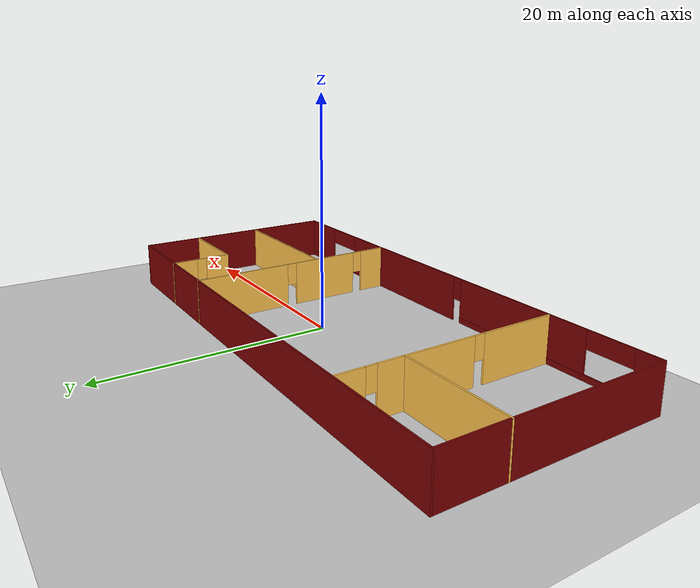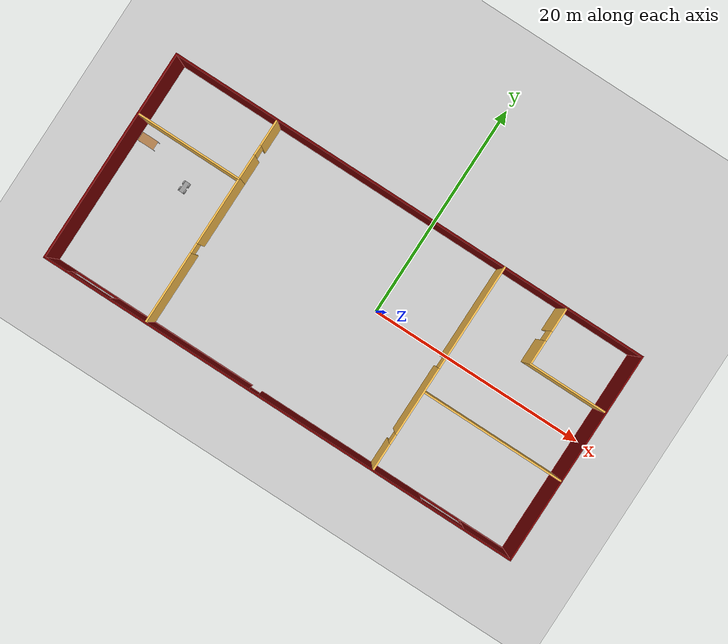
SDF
<sdf version="1.6">
 <world name="default">
  <model name="ground_plane">
   <static>1</static>
   <link name="link">
    <collision name="collision">
     <geometry><plane><normal>0 0 1</normal><size>100 100</size></plane></geometry>
     <surface><friction><ode><mu>100</mu><mu2>50</mu2></ode></friction></surface>
    </collision>
    <visual name="visual">
     <cast_shadows>0</cast_shadows>
     <geometry><plane><normal>0 0 1</normal><size>100 100</size></plane></geometry>
     <material>
      <script><uri>file://media/materials/scripts/gazebo.material</uri><name>Gazebo/Grey</name></script>
     </material>
    </visual>
   </link>
  </model>
  <model name="Building">
   <pose>-2.517 -1.189 0 0 -0 0</pose>
   <link name="Wall_0">
    <collision name="Wall_0_Collision">
     <geometry><box><size>19.5 0.15 4</size></box></geometry>
     <pose>0 0 2 0 -0 0</pose>
    </collision>
    <visual name="Wall_0_Visual">
     <pose>0 0 2 0 -0 0</pose>
     <geometry><box><size>19.5 0.15 4</size></box></geometry>
     <material>
      <script><uri>file://media/materials/scripts/gazebo.material</uri><name>Gazebo/Grey</name></script>
      <ambient>0.478431 0 0 1</ambient>
     </material>
     <meta><layer>0</layer></meta>
    </visual>
    <pose>-22.173 -0.009 0 0 0 -1.5708</pose>
   </link>
   <link name="Wall_1">
    <pose>0.001999 -9.684 0 0 -0 0</pose>
    <visual name="Wall_1_Visual_0">
     <pose>-21.1563 0 2 0 -0 0</pose>
     <geometry><box><size>2.18732 0.15 4</size></box></geometry>
     <material>
      <script><uri>file://media/materials/scripts/gazebo.material</uri><name>Gazebo/Grey</name></script>
      <ambient>0.478431 0 0 1</ambient>
     </material>
     <meta><layer>0</layer></meta>
    </visual>
    <collision name="Wall_1_Collision_0">
     <geometry><box><size>2.18732 0.15 4</size></box></geometry>
     <pose>-21.1563 0 2 0 -0 0</pose>
    </collision>
    <visual name="Wall_1_Visual_1">
     <pose>5.91304 0 2 0 -0 0</pose>
     <geometry><box><size>15.6013 0.15 4</size></box></geometry>
     <material>
      <script><uri>file://media/materials/scripts/gazebo.material</uri><name>Gazebo/Grey</name></script>
      <ambient>0.478431 0 0 1</ambient>
     </material>
     <meta><layer>0</layer></meta>
    </visual>
    <collision name="Wall_1_Collision_1">
     <geometry><box><size>15.6013 0.15 4</size></box></geometry>
     <pose>5.91304 0 2 0 -0 0</pose>
    </collision>
    <visual name="Wall_1_Visual_2">
     <pose>-11.4251 0 0.25 0 -0 0</pose>
     <geometry><box><size>17.2751 0.15 0.5</size></box></geometry>
     <material>
      <script><uri>file://media/materials/scripts/gazebo.material</uri><name>Gazebo/Grey</name></script>
      <ambient>0.478431 0 0 1</ambient>
     </material>
     <meta><layer>0</layer></meta>
    </visual>
    <collision name="Wall_1_Collision_2">
     <geometry><box><size>17.2751 0.15 0.5</size></box></geometry>
     <pose>-11.4251 0 0.25 0 -0 0</pose>
    </collision>
    <visual name="Wall_1_Visual_3">
     <pose>17.9818 0 0.25 0 -0 0</pose>
     <geometry><box><size>8.53632 0.15 0.5</size></box></geometry>
     <material>
      <script><uri>file://media/materials/scripts/gazebo.material</uri><name>Gazebo/Grey</name></script>
      <ambient>0.478431 0 0 1</ambient>
     </material>
     <meta><layer>0</layer></meta>
    </visual>
    <collision name="Wall_1_Collision_3">
     <geometry><box><size>8.53632 0.15 0.5</size></box></geometry>
     <pose>17.9818 0 0.25 0 -0 0</pose>
    </collision>
    <visual name="Wall_1_Visual_4">
     <pose>-9.42514 0 2.25 0 -0 0</pose>
     <geometry><box><size>13.2751 0.15 3.5</size></box></geometry>
     <material>
      <script><uri>file://media/materials/scripts/gazebo.material</uri><name>Gazebo/Grey</name></script>
      <ambient>0.478431 0 0 1</ambient>
     </material>
     <meta><layer>0</layer></meta>
    </visual>
    <collision name="Wall_1_Collision_4">
     <geometry><box><size>13.2751 0.15 3.5</size></box></geometry>
     <pose>-9.42514 0 2.25 0 -0 0</pose>
    </collision>
    <visual name="Wall_1_Visual_5">
     <pose>-9.42514 0 2.25 0 -0 0</pose>
     <geometry><box><size>13.2751 0.15 3.5</size></box></geometry>
     <material>
      <script><uri>file://media/materials/scripts/gazebo.material</uri><name>Gazebo/Grey</name></script>
      <ambient>0.478431 0 0 1</ambient>
     </material>
     <meta><layer>0</layer></meta>
    </visual>
    <collision name="Wall_1_Collision_5">
     <geometry><box><size>13.2751 0.15 3.5</size></box></geometry>
     <pose>-9.42514 0 2.25 0 -0 0</pose>
    </collision>
    <visual name="Wall_1_Visual_6">
     <pose>19.9818 0 2.25 0 -0 0</pose>
     <geometry><box><size>4.53632 0.15 3.5</size></box></geometry>
     <material>
      <script><uri>file://media/materials/scripts/gazebo.material</uri><name>Gazebo/Grey</name></script>
      <ambient>0.478431 0 0 1</ambient>
     </material>
     <meta><layer>0</layer></meta>
    </visual>
    <collision name="Wall_1_Collision_6">
     <geometry><box><size>4.53632 0.15 3.5</size></box></geometry>
     <pose>19.9818 0 2.25 0 -0 0</pose>
    </collision>
    <visual name="Wall_1_Visual_7">
     <pose>-2.3376 0 3 0 -0 0</pose>
     <geometry><box><size>0.9 0.15 2</size></box></geometry>
     <material>
      <script><uri>file://media/materials/scripts/gazebo.material</uri><name>Gazebo/Grey</name></script>
      <ambient>0.478431 0 0 1</ambient>
     </material>
     <meta><layer>0</layer></meta>
    </visual>
    <collision name="Wall_1_Collision_7">
     <geometry><box><size>0.9 0.15 2</size></box></geometry>
     <pose>-2.3376 0 3 0 -0 0</pose>
    </collision>
    <visual name="Wall_1_Visual_8">
     <pose>-2.3376 0 3 0 -0 0</pose>
     <geometry><box><size>0.9 0.15 2</size></box></geometry>
     <material>
      <script><uri>file://media/materials/scripts/gazebo.material</uri><name>Gazebo/Grey</name></script>
      <ambient>0.478431 0 0 1</ambient>
     </material>
     <meta><layer>0</layer></meta>
    </visual>
    <collision name="Wall_1_Collision_8">
     <geometry><box><size>0.9 0.15 2</size></box></geometry>
     <pose>-2.3376 0 3 0 -0 0</pose>
    </collision>
    <visual name="Wall_1_Visual_9">
     <pose>-18.0627 0 3.25 0 -0 0</pose>
     <geometry><box><size>4 0.15 1.5</size></box></geometry>
     <material>
      <script><uri>file://media/materials/scripts/gazebo.material</uri><name>Gazebo/Grey</name></script>
      <ambient>0.478431 0 0 1</ambient>
     </material>
     <meta><layer>0</layer></meta>
    </visual>
    <collision name="Wall_1_Collision_9">
     <geometry><box><size>4 0.15 1.5</size></box></geometry>
     <pose>-18.0627 0 3.25 0 -0 0</pose>
    </collision>
    <visual name="Wall_1_Visual_10">
     <pose>15.7137 0 3.25 0 -0 0</pose>
     <geometry><box><size>4 0.15 1.5</size></box></geometry>
     <material>
      <script><uri>file://media/materials/scripts/gazebo.material</uri><name>Gazebo/Grey</name></script>
      <ambient>0.478431 0 0 1</ambient>
     </material>
     <meta><layer>0</layer></meta>
    </visual>
    <collision name="Wall_1_Collision_10">
     <geometry><box><size>4 0.15 1.5</size></box></geometry>
     <pose>15.7137 0 3.25 0 -0 0</pose>
    </collision>
   </link>
   <link name="Wall_11">
    <pose>-12.577 6.826 0 0 -0 1.5708</pose>
    <visual name="Wall_11_Visual_0">
     <pose>-1.70646 0 2 0 -0 0</pose>
     <geometry><box><size>2.33709 0.15 4</size></box></geometry>
     <material>
      <script><uri>file://media/materials/scripts/gazebo.material</uri><name>Gazebo/Grey</name></script>
      <ambient>1 0.764706 0.305882 1</ambient>
     </material>
     <meta><layer>0</layer></meta>
    </visual>
    <collision name="Wall_11_Collision_0">
     <geometry><box><size>2.33709 0.15 4</size></box></geometry>
     <pose>-1.70646 0 2 0 -0 0</pose>
    </collision>
    <visual name="Wall_11_Visual_1">
     <pose>1.61854 0 2 0 -0 0</pose>
     <geometry><box><size>2.51292 0.15 4</size></box></geometry>
     <material>
      <script><uri>file://media/materials/scripts/gazebo.material</uri><name>Gazebo/Grey</name></script>
      <ambient>1 0.764706 0.305882 1</ambient>
     </material>
     <meta><layer>0</layer></meta>
    </visual>
    <collision name="Wall_11_Collision_1">
     <geometry><box><size>2.51292 0.15 4</size></box></geometry>
     <pose>1.61854 0 2 0 -0 0</pose>
    </collision>
    <visual name="Wall_11_Visual_2">
     <pose>-0.087915 0 3 0 -0 0</pose>
     <geometry><box><size>0.9 0.15 2</size></box></geometry>
     <material>
      <script><uri>file://media/materials/scripts/gazebo.material</uri><name>Gazebo/Grey</name></script>
      <ambient>1 0.764706 0.305882 1</ambient>
     </material>
     <meta><layer>0</layer></meta>
    </visual>
    <collision name="Wall_11_Collision_2">
     <geometry><box><size>0.9 0.15 2</size></box></geometry>
     <pose>-0.087915 0 3 0 -0 0</pose>
    </collision>
   </link>
   <link name="Wall_14">
    <pose>9.08 -0.008 0 0 0 -1.5708</pose>
    <visual name="Wall_14_Visual_0">
     <pose>-5.35516 0 2 0 -0 0</pose>
     <geometry><box><size>8.78968 0.15 4</size></box></geometry>
     <material>
      <script><uri>file://media/materials/scripts/gazebo.material</uri><name>Gazebo/Grey</name></script>
      <ambient>1 0.764706 0.305882 1</ambient>
     </material>
     <meta><layer>0</layer></meta>
    </visual>
    <collision name="Wall_14_Collision_0">
     <geometry><box><size>8.78968 0.15 4</size></box></geometry>
     <pose>-5.35516 0 2 0 -0 0</pose>
    </collision>
    <visual name="Wall_14_Visual_1">
     <pose>3.0945 0 2 0 -0 0</pose>
     <geometry><box><size>6.30964 0.15 4</size></box></geometry>
     <material>
      <script><uri>file://media/materials/scripts/gazebo.material</uri><name>Gazebo/Grey</name></script>
      <ambient>1 0.764706 0.305882 1</ambient>
     </material>
     <meta><layer>0</layer></meta>
    </visual>
    <collision name="Wall_14_Collision_1">
     <geometry><box><size>6.30964 0.15 4</size></box></geometry>
     <pose>3.0945 0 2 0 -0 0</pose>
    </collision>
    <visual name="Wall_14_Visual_2">
     <pose>8.44966 0 2 0 -0 0</pose>
     <geometry><box><size>2.60067 0.15 4</size></box></geometry>
     <material>
      <script><uri>file://media/materials/scripts/gazebo.material</uri><name>Gazebo/Grey</name></script>
      <ambient>1 0.764706 0.305882 1</ambient>
     </material>
     <meta><layer>0</layer></meta>
    </visual>
    <collision name="Wall_14_Collision_2">
     <geometry><box><size>2.60067 0.15 4</size></box></geometry>
     <pose>8.44966 0 2 0 -0 0</pose>
    </collision>
    <visual name="Wall_14_Visual_3">
     <pose>-0.510317 0 3 0 -0 0</pose>
     <geometry><box><size>0.9 0.15 2</size></box></geometry>
     <material>
      <script><uri>file://media/materials/scripts/gazebo.material</uri><name>Gazebo/Grey</name></script>
      <ambient>1 0.764706 0.305882 1</ambient>
     </material>
     <meta><layer>0</layer></meta>
    </visual>
    <collision name="Wall_14_Collision_3">
     <geometry><box><size>0.9 0.15 2</size></box></geometry>
     <pose>-0.510317 0 3 0 -0 0</pose>
    </collision>
    <visual name="Wall_14_Visual_4">
     <pose>6.69933 0 3 0 -0 0</pose>
     <geometry><box><size>0.9 0.15 2</size></box></geometry>
     <material>
      <script><uri>file://media/materials/scripts/gazebo.material</uri><name>Gazebo/Grey</name></script>
      <ambient>1 0.764706 0.305882 1</ambient>
     </material>
     <meta><layer>0</layer></meta>
    </visual>
    <collision name="Wall_14_Collision_4">
     <geometry><box><size>0.9 0.15 2</size></box></geometry>
     <pose>6.69933 0 3 0 -0 0</pose>
    </collision>
   </link>
   <link name="Wall_17">
    <collision name="Wall_17_Collision">
     <geometry><box><size>13.15 0.15 4</size></box></geometry>
     <pose>0 0 2 0 -0 0</pose>
    </collision>
    <visual name="Wall_17_Visual">
     <pose>0 0 2 0 -0 0</pose>
     <geometry><box><size>13.15 0.15 4</size></box></geometry>
     <material>
      <script><uri>file://media/materials/scripts/gazebo.material</uri><name>Gazebo/Grey</name></script>
      <ambient>1 0.764706 0.305882 1</ambient>
     </material>
     <meta><layer>0</layer></meta>
    </visual>
    <pose>15.611 -2.194 0 0 -0 0</pose>
   </link>
   <link name="Wall_2">
    <collision name="Wall_2_Collision">
     <geometry><box><size>19.5 0.15 4</size></box></geometry>
     <pose>0 0 2 0 -0 0</pose>
    </collision>
    <visual name="Wall_2_Visual">
     <pose>0 0 2 0 -0 0</pose>
     <geometry><box><size>19.5 0.15 4</size></box></geometry>
     <material>
      <script><uri>file://media/materials/scripts/gazebo.material</uri><name>Gazebo/Grey</name></script>
      <ambient>0.478431 0 0 1</ambient>
     </material>
     <meta><layer>0</layer></meta>
    </visual>
    <pose>22.177 -0.009 0 0 -0 1.5708</pose>
   </link>
   <link name="Wall_3">
    <collision name="Wall_3_Collision">
     <geometry><box><size>44.5 0.15 4</size></box></geometry>
     <pose>0 0 2 0 -0 0</pose>
    </collision>
    <visual name="Wall_3_Visual">
     <pose>0 0 2 0 -0 0</pose>
     <geometry><box><size>44.5 0.15 4</size></box></geometry>
     <material>
      <script><uri>file://media/materials/scripts/gazebo.material</uri><name>Gazebo/Grey</name></script>
      <ambient>0.478431 0 0 1</ambient>
     </material>
     <meta><layer>0</layer></meta>
    </visual>
    <pose>0.001999 9.666 0 0 -0 3.14159</pose>
   </link>
   <link name="Wall_5">
    <collision name="Wall_5_Collision">
     <geometry><box><size>9.75 0.15 4</size></box></geometry>
     <pose>0 0 2 0 -0 0</pose>
    </collision>
    <visual name="Wall_5_Visual">
     <pose>0 0 2 0 -0 0</pose>
     <geometry><box><size>9.75 0.15 4</size></box></geometry>
     <material>
      <script><uri>file://media/materials/scripts/gazebo.material</uri><name>Gazebo/Grey</name></script>
      <ambient>1 0.764706 0.305882 1</ambient>
     </material>
     <meta><layer>0</layer></meta>
    </visual>
    <pose>-17.377 4.026 0 0 -0 0</pose>
   </link>
   <link name="Wall_6">
    <pose>-12.577 -2.774 0 0 0 -1.5708</pose>
    <visual name="Wall_6_Visual_0">
     <pose>-3.76615 0 2 0 -0 0</pose>
     <geometry><box><size>6.2177 0.15 4</size></box></geometry>
     <material>
      <script><uri>file://media/materials/scripts/gazebo.material</uri><name>Gazebo/Grey</name></script>
      <ambient>1 0.764706 0.305882 1</ambient>
     </material>
     <meta><layer>0</layer></meta>
    </visual>
    <collision name="Wall_6_Collision_0">
     <geometry><box><size>6.2177 0.15 4</size></box></geometry>
     <pose>-3.76615 0 2 0 -0 0</pose>
    </collision>
    <visual name="Wall_6_Visual_1">
     <pose>3.55885 0 2 0 -0 0</pose>
     <geometry><box><size>6.6323 0.15 4</size></box></geometry>
     <material>
      <script><uri>file://media/materials/scripts/gazebo.material</uri><name>Gazebo/Grey</name></script>
      <ambient>1 0.764706 0.305882 1</ambient>
     </material>
     <meta><layer>0</layer></meta>
    </visual>
    <collision name="Wall_6_Collision_1">
     <geometry><box><size>6.6323 0.15 4</size></box></geometry>
     <pose>3.55885 0 2 0 -0 0</pose>
    </collision>
    <visual name="Wall_6_Visual_2">
     <pose>-0.207302 0 3 0 -0 0</pose>
     <geometry><box><size>0.9 0.15 2</size></box></geometry>
     <material>
      <script><uri>file://media/materials/scripts/gazebo.material</uri><name>Gazebo/Grey</name></script>
      <ambient>1 0.764706 0.305882 1</ambient>
     </material>
     <meta><layer>0</layer></meta>
    </visual>
    <collision name="Wall_6_Collision_2">
     <geometry><box><size>0.9 0.15 2</size></box></geometry>
     <pose>-0.207302 0 3 0 -0 0</pose>
    </collision>
   </link>
   <link name="Wall_8">
    <pose>15.006 7.009 0 0 0 -1.5708</pose>
    <visual name="Wall_8_Visual_0">
     <pose>-1.58074 0 2 0 -0 0</pose>
     <geometry><box><size>2.33852 0.15 4</size></box></geometry>
     <material>
      <script><uri>file://media/materials/scripts/gazebo.material</uri><name>Gazebo/Grey</name></script>
      <ambient>1 0.764706 0.305882 1</ambient>
     </material>
     <meta><layer>0</layer></meta>
    </visual>
    <collision name="Wall_8_Collision_0">
     <geometry><box><size>2.33852 0.15 4</size></box></geometry>
     <pose>-1.58074 0 2 0 -0 0</pose>
    </collision>
    <visual name="Wall_8_Visual_1">
     <pose>1.61926 0 2 0 -0 0</pose>
     <geometry><box><size>2.26148 0.15 4</size></box></geometry>
     <material>
      <script><uri>file://media/materials/scripts/gazebo.material</uri><name>Gazebo/Grey</name></script>
      <ambient>1 0.764706 0.305882 1</ambient>
     </material>
     <meta><layer>0</layer></meta>
    </visual>
    <collision name="Wall_8_Collision_1">
     <geometry><box><size>2.26148 0.15 4</size></box></geometry>
     <pose>1.61926 0 2 0 -0 0</pose>
    </collision>
    <visual name="Wall_8_Visual_2">
     <pose>0.038517 0 3 0 -0 0</pose>
     <geometry><box><size>0.9 0.15 2</size></box></geometry>
     <material>
      <script><uri>file://media/materials/scripts/gazebo.material</uri><name>Gazebo/Grey</name></script>
      <ambient>1 0.764706 0.305882 1</ambient>
     </material>
     <meta><layer>0</layer></meta>
    </visual>
    <collision name="Wall_8_Collision_2">
     <geometry><box><size>0.9 0.15 2</size></box></geometry>
     <pose>0.038517 0 3 0 -0 0</pose>
    </collision>
   </link>
   <link name="Wall_9">
    <collision name="Wall_9_Collision">
     <geometry><box><size>7.25 0.15 4</size></box></geometry>
     <pose>0 0 2 0 -0 0</pose>
    </collision>
    <visual name="Wall_9_Visual">
     <pose>0 0 2 0 -0 0</pose>
     <geometry><box><size>7.25 0.15 4</size></box></geometry>
     <material>
      <script><uri>file://media/materials/scripts/gazebo.material</uri><name>Gazebo/Grey</name></script>
      <ambient>1 0.764706 0.305882 1</ambient>
     </material>
     <meta><layer>0</layer></meta>
    </visual>
    <pose>18.556 4.334 0 0 -0 0</pose>
   </link>
   <static>1</static>
  </model>
  <model name="4Wheel_Robot_clone">
   <link name="link_2">
    <pose>0.001842 -0.000209 0 0 -0 0</pose>
    <inertial>
     <mass>1</mass>
     <inertia>
      <ixx>0.166667</ixx>
      <ixy>0</ixy>
      <ixz>0</ixz>
      <iyy>0.166667</iyy>
      <iyz>0</iyz>
      <izz>0.166667</izz>
     </inertia>
    </inertial>
    <visual name="visual">
     <geometry><box><size>0.4 1 0.1</size></box></geometry>
     <material>
      <lighting>1</lighting>
      <script><uri>file://media/materials/scripts/gazebo.material</uri><name>Gazebo/Grey</name></script>
      <shader type="pixel"><normal_map>__default__</normal_map></shader>
      <ambient>0.3 0.3 0.3 1</ambient>
      <diffuse>0.7 0.7 0.7 1</diffuse>
      <specular>0.01 0.01 0.01 1</specular>
      <emissive>0 0 0 1</emissive>
     </material>
    </visual>
    <collision name="collision">
     <geometry><box><size>0.4 1 0.1</size></box></geometry>
     <surface>
      <friction>
       <ode><mu>1</mu><mu2>1</mu2><fdir1>0 0 0</fdir1><slip1>0</slip1><slip2>0</slip2></ode>
       <torsional>
        <coefficient>1</coefficient>
        <patch_radius>0</patch_radius>
        <surface_radius>0</surface_radius>
        <use_patch_radius>1</use_patch_radius>
        <ode><slip>0</slip></ode>
       </torsional>
      </friction>
      <bounce><restitution_coefficient>0</restitution_coefficient><threshold>1e+06</threshold></bounce>
      <contact>
       <collide_without_contact>0</collide_without_contact>
       <collide_without_contact_bitmask>1</collide_without_contact_bitmask>
       <collide_bitmask>1</collide_bitmask>
       <ode>
        <soft_cfm>0</soft_cfm>
        <soft_erp>0.2</soft_erp>
        <kp>1e+13</kp>
        <kd>1</kd>
        <max_vel>0.01</max_vel>
        <min_depth>0</min_depth>
       </ode>
       <bullet>
        <split_impulse>1</split_impulse>
        <split_impulse_penetration_threshold>-0.01</split_impulse_penetration_threshold>
        <soft_cfm>0</soft_cfm>
        <soft_erp>0.2</soft_erp>
        <kp>1e+13</kp>
        <kd>1</kd>
       </bullet>
      </contact>
     </surface>
    </collision>
   </link>
   <link name="link_3">
    <pose>-0.252675 0.298691 0 1.57079 -9.6e-05 -1.54815</pose>
    <inertial>
     <mass>1</mass>
     <inertia><ixx>0.145833</ixx><ixy>0</ixy><ixz>0</ixz><iyy>0.145833</iyy><iyz>0</iyz><izz>0.125</izz></inertia>
    </inertial>
    <visual name="visual">
     <geometry><cylinder><radius>0.2</radius><length>0.1</length></cylinder></geometry>
     <material>
      <lighting>1</lighting>
      <script><uri>file://media/materials/scripts/gazebo.material</uri><name>Gazebo/Grey</name></script>
      <shader type="pixel"><normal_map>__default__</normal_map></shader>
      <ambient>0.3 0.3 0.3 1</ambient>
      <diffuse>0.7 0.7 0.7 1</diffuse>
      <specular>0.01 0.01 0.01 1</specular>
      <emissive>0 0 0 1</emissive>
     </material>
    </visual>
    <collision name="collision">
     <geometry><cylinder><radius>0.2</radius><length>0.1</length></cylinder></geometry>
     <surface>
      <friction>
       <ode><mu>1</mu><mu2>1</mu2><fdir1>0 0 0</fdir1><slip1>0</slip1><slip2>0</slip2></ode>
       <torsional>
        <coefficient>1</coefficient>
        <patch_radius>0</patch_radius>
        <surface_radius>0</surface_radius>
        <use_patch_radius>1</use_patch_radius>
        <ode><slip>0</slip></ode>
       </torsional>
      </friction>
      <bounce><restitution_coefficient>0</restitution_coefficient><threshold>1e+06</threshold></bounce>
      <contact>
       <collide_without_contact>0</collide_without_contact>
       <collide_without_contact_bitmask>1</collide_without_contact_bitmask>
       <collide_bitmask>1</collide_bitmask>
       <ode>
        <soft_cfm>0</soft_cfm>
        <soft_erp>0.2</soft_erp>
        <kp>1e+13</kp>
        <kd>1</kd>
        <max_vel>0.01</max_vel>
        <min_depth>0</min_depth>
       </ode>
       <bullet>
        <split_impulse>1</split_impulse>
        <split_impulse_penetration_threshold>-0.01</split_impulse_penetration_threshold>
        <soft_cfm>0</soft_cfm>
        <soft_erp>0.2</soft_erp>
        <kp>1e+13</kp>
        <kd>1</kd>
       </bullet>
      </contact>
     </surface>
    </collision>
   </link>
   <link name="link_3_clone">
    <pose>-0.255703 -0.298438 0 1.5708 9.6e-05 1.60871</pose>
    <inertial>
     <mass>1</mass>
     <inertia><ixx>0.145833</ixx><ixy>0</ixy><ixz>0</ixz><iyy>0.145833</iyy><iyz>0</iyz><izz>0.125</izz></inertia>
    </inertial>
    <visual name="visual">
     <geometry><cylinder><radius>0.2</radius><length>0.1</length></cylinder></geometry>
     <material>
      <lighting>1</lighting>
      <script><uri>file://media/materials/scripts/gazebo.material</uri><name>Gazebo/Grey</name></script>
      <shader type="pixel"><normal_map>__default__</normal_map></shader>
      <ambient>0.3 0.3 0.3 1</ambient>
      <diffuse>0.7 0.7 0.7 1</diffuse>
      <specular>0.01 0.01 0.01 1</specular>
      <emissive>0 0 0 1</emissive>
     </material>
    </visual>
    <collision name="collision">
     <geometry><cylinder><radius>0.2</radius><length>0.1</length></cylinder></geometry>
     <surface>
      <friction>
       <ode><mu>1</mu><mu2>1</mu2><fdir1>0 0 0</fdir1><slip1>0</slip1><slip2>0</slip2></ode>
       <torsional>
        <coefficient>1</coefficient>
        <patch_radius>0</patch_radius>
        <surface_radius>0</surface_radius>
        <use_patch_radius>1</use_patch_radius>
        <ode><slip>0</slip></ode>
       </torsional>
      </friction>
      <bounce><restitution_coefficient>0</restitution_coefficient><threshold>1e+06</threshold></bounce>
      <contact>
       <collide_without_contact>0</collide_without_contact>
       <collide_without_contact_bitmask>1</collide_without_contact_bitmask>
       <collide_bitmask>1</collide_bitmask>
       <ode>
        <soft_cfm>0</soft_cfm>
        <soft_erp>0.2</soft_erp>
        <kp>1e+13</kp>
        <kd>1</kd>
        <max_vel>0.01</max_vel>
        <min_depth>0</min_depth>
       </ode>
       <bullet>
        <split_impulse>1</split_impulse>
        <split_impulse_penetration_threshold>-0.01</split_impulse_penetration_threshold>
        <soft_cfm>0</soft_cfm>
        <soft_erp>0.2</soft_erp>
        <kp>1e+13</kp>
        <kd>1</kd>
       </bullet>
      </contact>
     </surface>
    </collision>
   </link>
   <link name="link_3_clone_0">
    <pose>0.252501 0.299608 0 1.5708 9.6e-05 1.57409</pose>
    <inertial>
     <mass>1</mass>
     <inertia><ixx>0.145833</ixx><ixy>0</ixy><ixz>0</ixz><iyy>0.145833</iyy><iyz>0</iyz><izz>0.125</izz></inertia>
    </inertial>
    <visual name="visual">
     <geometry><cylinder><radius>0.2</radius><length>0.1</length></cylinder></geometry>
     <material>
      <lighting>1</lighting>
      <script><uri>file://media/materials/scripts/gazebo.material</uri><name>Gazebo/Grey</name></script>
      <shader type="pixel"><normal_map>__default__</normal_map></shader>
      <ambient>0.3 0.3 0.3 1</ambient>
      <diffuse>0.7 0.7 0.7 1</diffuse>
      <specular>0.01 0.01 0.01 1</specular>
      <emissive>0 0 0 1</emissive>
     </material>
    </visual>
    <collision name="collision">
     <geometry><cylinder><radius>0.2</radius><length>0.1</length></cylinder></geometry>
     <surface>
      <friction>
       <ode><mu>1</mu><mu2>1</mu2><fdir1>0 0 0</fdir1><slip1>0</slip1><slip2>0</slip2></ode>
       <torsional>
        <coefficient>1</coefficient>
        <patch_radius>0</patch_radius>
        <surface_radius>0</surface_radius>
        <use_patch_radius>1</use_patch_radius>
        <ode><slip>0</slip></ode>
       </torsional>
      </friction>
      <bounce><restitution_coefficient>0</restitution_coefficient><threshold>1e+06</threshold></bounce>
      <contact>
       <collide_without_contact>0</collide_without_contact>
       <collide_without_contact_bitmask>1</collide_without_contact_bitmask>
       <collide_bitmask>1</collide_bitmask>
       <ode>
        <soft_cfm>0</soft_cfm>
        <soft_erp>0.2</soft_erp>
        <kp>1e+13</kp>
        <kd>1</kd>
        <max_vel>0.01</max_vel>
        <min_depth>0</min_depth>
       </ode>
       <bullet>
        <split_impulse>1</split_impulse>
        <split_impulse_penetration_threshold>-0.01</split_impulse_penetration_threshold>
        <soft_cfm>0</soft_cfm>
        <soft_erp>0.2</soft_erp>
        <kp>1e+13</kp>
        <kd>1</kd>
       </bullet>
      </contact>
     </surface>
    </collision>
   </link>
   <link name="link_3_clone_1">
    <pose>0.254035 -0.299653 0 1.57079 9.6e-05 1.55982</pose>
    <inertial>
     <mass>1</mass>
     <inertia><ixx>0.145833</ixx><ixy>0</ixy><ixz>0</ixz><iyy>0.145833</iyy><iyz>0</iyz><izz>0.125</izz></inertia>
    </inertial>
    <visual name="visual">
     <geometry><cylinder><radius>0.2</radius><length>0.1</length></cylinder></geometry>
     <material>
      <lighting>1</lighting>
      <script><uri>file://media/materials/scripts/gazebo.material</uri><name>Gazebo/Grey</name></script>
      <shader type="pixel"><normal_map>__default__</normal_map></shader>
      <ambient>0.3 0.3 0.3 1</ambient>
      <diffuse>0.7 0.7 0.7 1</diffuse>
      <specular>0.01 0.01 0.01 1</specular>
      <emissive>0 0 0 1</emissive>
     </material>
    </visual>
    <collision name="collision">
     <geometry><cylinder><radius>0.2</radius><length>0.1</length></cylinder></geometry>
     <surface>
      <friction>
       <ode><mu>1</mu><mu2>1</mu2><fdir1>0 0 0</fdir1><slip1>0</slip1><slip2>0</slip2></ode>
       <torsional>
        <coefficient>1</coefficient>
        <patch_radius>0</patch_radius>
        <surface_radius>0</surface_radius>
        <use_patch_radius>1</use_patch_radius>
        <ode><slip>0</slip></ode>
       </torsional>
      </friction>
      <bounce><restitution_coefficient>0</restitution_coefficient><threshold>1e+06</threshold></bounce>
      <contact>
       <collide_without_contact>0</collide_without_contact>
       <collide_without_contact_bitmask>1</collide_without_contact_bitmask>
       <collide_bitmask>1</collide_bitmask>
       <ode>
        <soft_cfm>0</soft_cfm>
        <soft_erp>0.2</soft_erp>
        <kp>1e+13</kp>
        <kd>1</kd>
        <max_vel>0.01</max_vel>
        <min_depth>0</min_depth>
       </ode>
       <bullet>
        <split_impulse>1</split_impulse>
        <split_impulse_penetration_threshold>-0.01</split_impulse_penetration_threshold>
        <soft_cfm>0</soft_cfm>
        <soft_erp>0.2</soft_erp>
        <kp>1e+13</kp>
        <kd>1</kd>
       </bullet>
      </contact>
     </surface>
    </collision>
   </link>
   <joint name="link_2_JOINT_10" type="revolute">
    <parent>link_2</parent>
    <child>link_3_clone_1</child>
    <axis>
     <xyz>0 0 1</xyz>
     <use_parent_model_frame>0</use_parent_model_frame>
     <limit>
      <lower>-1.79769e+308</lower>
      <upper>1.79769e+308</upper>
      <effort>-1</effort>
      <velocity>-1</velocity>
     </limit>
     <dynamics>
      <spring_reference>0</spring_reference>
      <spring_stiffness>0</spring_stiffness>
      <damping>0</damping>
     </dynamics>
    </axis>
    <physics>
     <ode><limit><cfm>0</cfm><erp>0.2</erp></limit><suspension><cfm>0</cfm><erp>0.2</erp></suspension></ode>
    </physics>
   </joint>
   <joint name="link_2_JOINT_5" type="revolute">
    <parent>link_2</parent>
    <child>link_3</child>
    <axis>
     <xyz>0 0 1</xyz>
     <use_parent_model_frame>0</use_parent_model_frame>
     <limit>
      <lower>-1.79769e+308</lower>
      <upper>1.79769e+308</upper>
      <effort>-1</effort>
      <velocity>-1</velocity>
     </limit>
     <dynamics>
      <spring_reference>0</spring_reference>
      <spring_stiffness>0</spring_stiffness>
      <damping>0</damping>
     </dynamics>
    </axis>
    <physics>
     <ode><limit><cfm>0</cfm><erp>0.2</erp></limit><suspension><cfm>0</cfm><erp>0.2</erp></suspension></ode>
    </physics>
   </joint>
   <joint name="link_2_JOINT_7" type="revolute">
    <parent>link_2</parent>
    <child>link_3_clone</child>
    <axis>
     <xyz>0 0 1</xyz>
     <use_parent_model_frame>0</use_parent_model_frame>
     <limit>
      <lower>-1.79769e+308</lower>
      <upper>1.79769e+308</upper>
      <effort>-1</effort>
      <velocity>-1</velocity>
     </limit>
     <dynamics>
      <spring_reference>0</spring_reference>
      <spring_stiffness>0</spring_stiffness>
      <damping>0</damping>
     </dynamics>
    </axis>
    <physics>
     <ode><limit><cfm>0</cfm><erp>0.2</erp></limit><suspension><cfm>0</cfm><erp>0.2</erp></suspension></ode>
    </physics>
   </joint>
   <joint name="link_2_JOINT_8" type="revolute">
    <parent>link_2</parent>
    <child>link_3_clone_0</child>
    <axis>
     <xyz>1 0 0</xyz>
     <use_parent_model_frame>0</use_parent_model_frame>
     <limit>
      <lower>-1.79769e+308</lower>
      <upper>1.79769e+308</upper>
      <effort>-1</effort>
      <velocity>-1</velocity>
     </limit>
     <dynamics>
      <spring_reference>0</spring_reference>
      <spring_stiffness>0</spring_stiffness>
      <damping>0</damping>
     </dynamics>
    </axis>
    <physics>
     <ode><limit><cfm>0</cfm><erp>0.2</erp></limit><suspension><cfm>0</cfm><erp>0.2</erp></suspension></ode>
    </physics>
   </joint>
   <static>0</static>
   <pose>-19.1196 -0.045358 0.2 -5e-06 7e-06 -0.035993</pose>
  </model>
  <model name="table">
   <static>1</static>
   <link name="link">
    <collision name="surface">
     <pose>0 0 1 0 -0 0</pose>
     <geometry><box><size>1.5 0.8 0.03</size></box></geometry>
     <surface><friction><ode><mu>0.6</mu><mu2>0.6</mu2></ode></friction></surface>
    </collision>
    <visual name="visual1">
     <pose>0 0 1 0 -0 0</pose>
     <geometry><box><size>1.5 0.8 0.03</size></box></geometry>
     <material>
      <script><uri>file://media/materials/scripts/gazebo.material</uri><name>Gazebo/Wood</name></script>
     </material>
    </visual>
    <collision name="front_left_leg">
     <pose>0.68 0.38 0.5 0 -0 0</pose>
     <geometry><cylinder><radius>0.02</radius><length>1</length></cylinder></geometry>
    </collision>
    <visual name="front_left_leg">
     <pose>0.68 0.38 0.5 0 -0 0</pose>
     <geometry><cylinder><radius>0.02</radius><length>1</length></cylinder></geometry>
     <material>
      <script><uri>file://media/materials/scripts/gazebo.material</uri><name>Gazebo/Grey</name></script>
     </material>
    </visual>
    <collision name="front_right_leg">
     <pose>0.68 -0.38 0.5 0 -0 0</pose>
     <geometry><cylinder><radius>0.02</radius><length>1</length></cylinder></geometry>
    </collision>
    <visual name="front_right_leg">
     <pose>0.68 -0.38 0.5 0 -0 0</pose>
     <geometry><cylinder><radius>0.02</radius><length>1</length></cylinder></geometry>
     <material>
      <script><uri>file://media/materials/scripts/gazebo.material</uri><name>Gazebo/Grey</name></script>
     </material>
    </visual>
    <collision name="back_right_leg">
     <pose>-0.68 -0.38 0.5 0 -0 0</pose>
     <geometry><cylinder><radius>0.02</radius><length>1</length></cylinder></geometry>
    </collision>
    <visual name="back_right_leg">
     <pose>-0.68 -0.38 0.5 0 -0 0</pose>
     <geometry><cylinder><radius>0.02</radius><length>1</length></cylinder></geometry>
     <material>
      <script><uri>file://media/materials/scripts/gazebo.material</uri><name>Gazebo/Grey</name></script>
     </material>
    </visual>
    <collision name="back_left_leg">
     <pose>-0.68 0.38 0.5 0 -0 0</pose>
     <geometry><cylinder><radius>0.02</radius><length>1</length></cylinder></geometry>
    </collision>
    <visual name="back_left_leg">
     <pose>-0.68 0.38 0.5 0 -0 0</pose>
     <geometry><cylinder><radius>0.02</radius><length>1</length></cylinder></geometry>
     <material>
      <script><uri>file://media/materials/scripts/gazebo.material</uri><name>Gazebo/Grey</name></script>
     </material>
    </visual>
   </link>
   <pose>-23.5639 1.51578 0 0 -0 0</pose>
  </model>
 </world>
</sdf>
